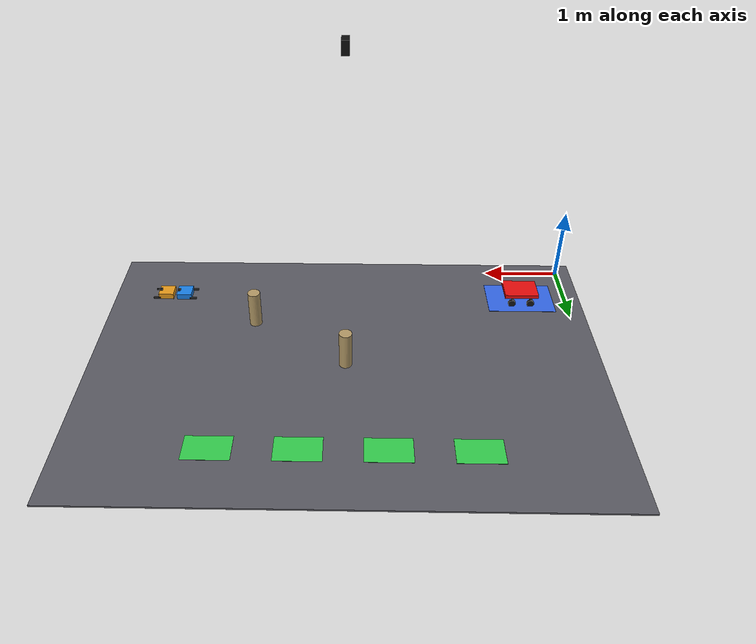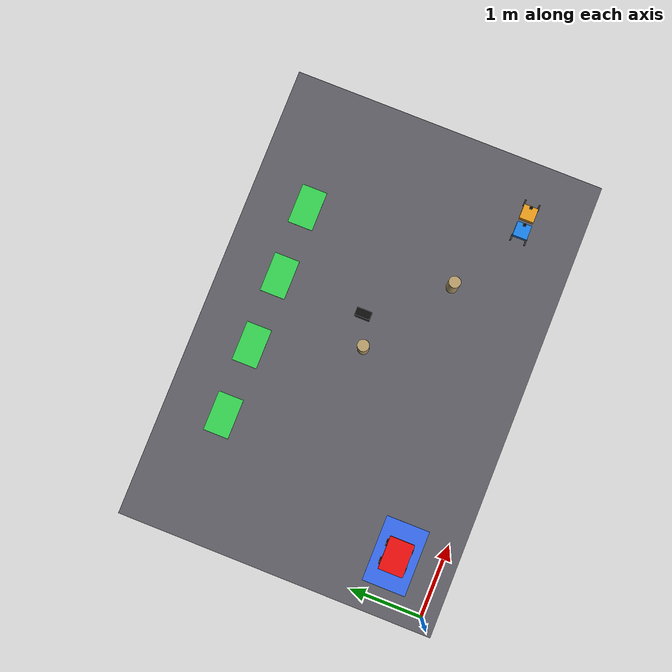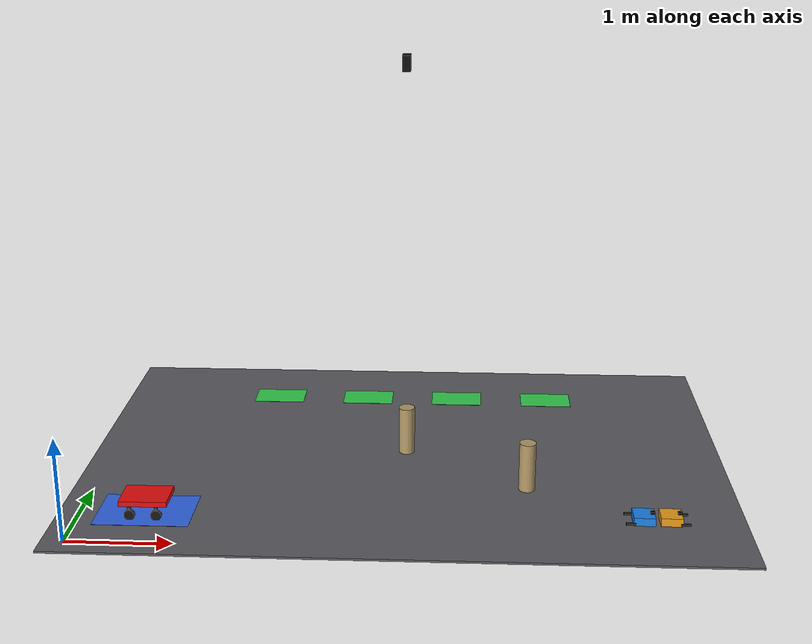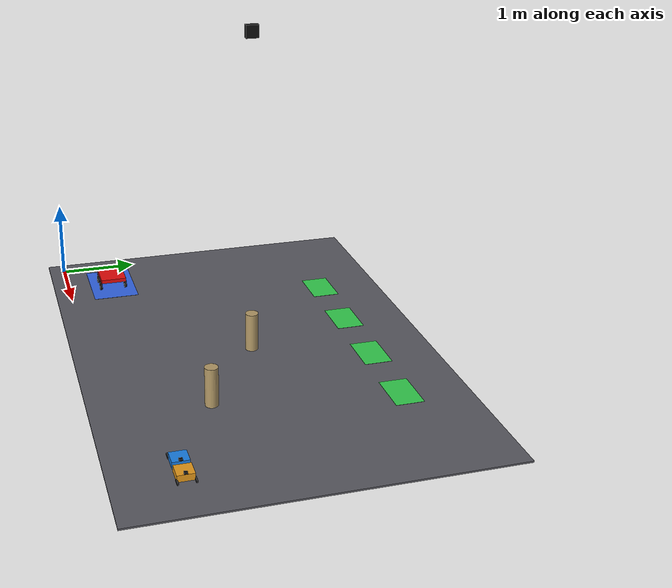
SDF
<?xml version="1.0" ?>

<sdf version="1.8">
  <world name="parking_lot">

    <!-- ===== Physics / Core Systems ===== -->
    <physics name="1ms" type="ignored">
      <max_step_size>0.001</max_step_size>
      <real_time_factor>1.0</real_time_factor>
    </physics>

    <plugin filename="gz-sim-physics-system"
            name="gz::sim::systems::Physics"/>

    <plugin filename="gz-sim-user-commands-system"
            name="gz::sim::systems::UserCommands"/>

    <plugin filename="gz-sim-scene-broadcaster-system"
            name="gz::sim::systems::SceneBroadcaster"/>

    <!-- Camera sensor를 쓰려면 Sensors system이 필요함 -->
    <plugin filename="gz-sim-sensors-system"
            name="gz::sim::systems::Sensors">
      <render_engine>ogre2</render_engine>
    </plugin>

    <!-- ===== Light ===== -->
    <light type="directional" name="sun">
      <cast_shadows>false</cast_shadows>
      <pose>0 0 10 0 0 0</pose>
      <diffuse>0.9 0.9 0.9 1</diffuse>
      <specular>0.2 0.2 0.2 1</specular>
      <direction>-0.3 0.3 -0.9</direction>
    </light>

    <!-- ===== Overhead CCTV Camera ===== -->
    <model name="overhead_cctv">
      <static>true</static>
      <pose>3 2 4.0 0 1.5708 0</pose>

      <link name="camera_link">
        <visual name="camera_body">
          <geometry>
            <box><size>0.15 0.15 0.08</size></box>
          </geometry>
          <material>
            <ambient>0.05 0.05 0.05 1</ambient>
            <diffuse>0.05 0.05 0.05 1</diffuse>
          </material>
        </visual>

        <sensor name="cctv_camera" type="camera">
          <always_on>true</always_on>
          <update_rate>15</update_rate>
          <topic>/cctv/image</topic>

          <camera>
            <horizontal_fov>1.5708</horizontal_fov>
            <image>
              <width>640</width>
              <height>480</height>
              <format>R8G8B8</format>
            </image>
            <clip>
              <near>0.1</near>
              <far>20.0</far>
            </clip>
          </camera>
        </sensor>
      </link>
    </model>
    <!-- ===== Target Vehicle (대기공간 정차 차량) ===== -->
    <model name="target_vehicle">
      <pose>0.625 0.6 0.002 0 0 0</pose>
      <link name="body">
        <inertial>
          <mass>1.5</mass>
          <inertia>
            <ixx>0.0153</ixx><iyy>0.0294</iyy><izz>0.0366</izz>
            <ixy>0</ixy><ixz>0</ixz><iyz>0</iyz>
          </inertia>
        </inertial>

        <!-- 차체 (빨강 — CCTV 차량 클래스 판별 기준) -->
        <visual name="body_visual">
          <pose>0 0 0.155 0 0 0</pose>
          <geometry><box><size>0.45 0.34 0.05</size></box></geometry>
          <material>
            <ambient>0.8 0.05 0.05 1</ambient>
            <diffuse>0.9 0.05 0.05 1</diffuse>
            <specular>0.1 0.1 0.1 1</specular>
          </material>
        </visual>
        <collision name="body_collision">
          <pose>0 0 0.155 0 0 0</pose>
          <geometry><box><size>0.45 0.34 0.05</size></box></geometry>
        </collision>

        <!-- 바퀴 4개 (검정 — 채도 낮아 CCTV 장애물 분할에 안 잡힘) -->
        <visual name="wheel_fl_vis">
          <pose>0.125 0.17 0.05 1.5708 0 0</pose>
          <geometry><cylinder><radius>0.05</radius><length>0.03</length></cylinder></geometry>
          <material><ambient>0.08 0.08 0.08 1</ambient><diffuse>0.08 0.08 0.08 1</diffuse></material>
        </visual>
        <collision name="wheel_fl_col">
          <pose>0.125 0.17 0.05 1.5708 0 0</pose>
          <geometry><cylinder><radius>0.05</radius><length>0.03</length></cylinder></geometry>
          <surface><friction><ode><mu>0.05</mu><mu2>0.05</mu2></ode></friction></surface>
        </collision>
        <visual name="wheel_fr_vis">
          <pose>0.125 -0.17 0.05 1.5708 0 0</pose>
          <geometry><cylinder><radius>0.05</radius><length>0.03</length></cylinder></geometry>
          <material><ambient>0.08 0.08 0.08 1</ambient><diffuse>0.08 0.08 0.08 1</diffuse></material>
        </visual>
        <collision name="wheel_fr_col">
          <pose>0.125 -0.17 0.05 1.5708 0 0</pose>
          <geometry><cylinder><radius>0.05</radius><length>0.03</length></cylinder></geometry>
          <surface><friction><ode><mu>0.05</mu><mu2>0.05</mu2></ode></friction></surface>
        </collision>
        <visual name="wheel_rl_vis">
          <pose>-0.125 0.17 0.05 1.5708 0 0</pose>
          <geometry><cylinder><radius>0.05</radius><length>0.03</length></cylinder></geometry>
          <material><ambient>0.08 0.08 0.08 1</ambient><diffuse>0.08 0.08 0.08 1</diffuse></material>
        </visual>
        <collision name="wheel_rl_col">
          <pose>-0.125 0.17 0.05 1.5708 0 0</pose>
          <geometry><cylinder><radius>0.05</radius><length>0.03</length></cylinder></geometry>
          <surface><friction><ode><mu>0.05</mu><mu2>0.05</mu2></ode></friction></surface>
        </collision>
        <visual name="wheel_rr_vis">
          <pose>-0.125 -0.17 0.05 1.5708 0 0</pose>
          <geometry><cylinder><radius>0.05</radius><length>0.03</length></cylinder></geometry>
          <material><ambient>0.08 0.08 0.08 1</ambient><diffuse>0.08 0.08 0.08 1</diffuse></material>
        </visual>
        <collision name="wheel_rr_col">
          <pose>-0.125 -0.17 0.05 1.5708 0 0</pose>
          <geometry><cylinder><radius>0.05</radius><length>0.03</length></cylinder></geometry>
          <surface><friction><ode><mu>0.05</mu><mu2>0.05</mu2></ode></friction></surface>
        </collision>

        <!-- 바퀴-차체 스트럿 (visual only) -->
        <visual name="strut_fl"><pose>0.125 0.17 0.115 0 0 0</pose>
          <geometry><box><size>0.03 0.02 0.03</size></box></geometry>
          <material><ambient>0.3 0.3 0.3 1</ambient><diffuse>0.3 0.3 0.3 1</diffuse></material></visual>
        <visual name="strut_fr"><pose>0.125 -0.17 0.115 0 0 0</pose>
          <geometry><box><size>0.03 0.02 0.03</size></box></geometry>
          <material><ambient>0.3 0.3 0.3 1</ambient><diffuse>0.3 0.3 0.3 1</diffuse></material></visual>
        <visual name="strut_rl"><pose>-0.125 0.17 0.115 0 0 0</pose>
          <geometry><box><size>0.03 0.02 0.03</size></box></geometry>
          <material><ambient>0.3 0.3 0.3 1</ambient><diffuse>0.3 0.3 0.3 1</diffuse></material></visual>
        <visual name="strut_rr"><pose>-0.125 -0.17 0.115 0 0 0</pose>
          <geometry><box><size>0.03 0.02 0.03</size></box></geometry>
          <material><ambient>0.3 0.3 0.3 1</ambient><diffuse>0.3 0.3 0.3 1</diffuse></material></visual>
      </link>
    </model>
    <!-- ===== Ground ===== -->
    <model name="ground">
      <static>true</static>
      <pose>3 2 0 0 0 0</pose>
      <link name="link">
        <collision name="col">
          <geometry>
            <box><size>6.4 4.4 0.02</size></box>
          </geometry>
        </collision>
        <visual name="vis">
          <geometry>
            <box><size>6.4 4.4 0.02</size></box>
          </geometry>
          <material>
            <ambient>0.35 0.35 0.38 1</ambient>
            <diffuse>0.35 0.35 0.38 1</diffuse>
          </material>
        </visual>
      </link>
    </model>

    <!-- ===== Pillar 1 ===== -->
    <model name="pillar_1">
      <static>true</static>
      <pose>3.0 2.0 0.25 0 0 0</pose>
      <link name="link">
        <collision name="col">
          <geometry><cylinder><radius>0.08</radius><length>0.5</length></cylinder></geometry>
        </collision>
        <visual name="vis">
          <geometry><cylinder><radius>0.08</radius><length>0.5</length></cylinder></geometry>
          <material>
            <ambient>0.7 0.6 0.4 1</ambient>
            <diffuse>0.7 0.6 0.4 1</diffuse>
          </material>
        </visual>
      </link>
    </model>

    <!-- ===== Pillar 2 ===== -->
    <model name="pillar_2">
      <static>true</static>
      <pose>4.2 1.2 0.25 0 0 0</pose>
      <link name="link">
        <collision name="col">
          <geometry><cylinder><radius>0.08</radius><length>0.5</length></cylinder></geometry>
        </collision>
        <visual name="vis">
          <geometry><cylinder><radius>0.08</radius><length>0.5</length></cylinder></geometry>
          <material>
            <ambient>0.7 0.6 0.4 1</ambient>
            <diffuse>0.7 0.6 0.4 1</diffuse>
          </material>
        </visual>
      </link>
    </model>

    <!-- ===== Waiting Zone ===== -->
    <model name="waiting_zone">
      <static>true</static>
      <pose>0.62 0.6 0.011 0 0 0</pose>
      <link name="link">
        <visual name="vis">
          <geometry><box><size>0.9 0.6 0.002</size></box></geometry>
          <material>
            <ambient>0.2 0.4 0.9 1</ambient>
            <diffuse>0.2 0.4 0.9 1</diffuse>
          </material>
        </visual>
      </link>
    </model>

    <!-- ===== Parking Slots ===== -->
    <model name="slot_1">
      <static>true</static>
      <pose>1.5 3.4 0.011 0 0 0</pose>
      <link name="link">
        <visual name="vis">
          <geometry><box><size>0.55 0.35 0.002</size></box></geometry>
          <material><ambient>0.2 0.8 0.3 1</ambient><diffuse>0.2 0.8 0.3 1</diffuse></material>
        </visual>
      </link>
    </model>

    <model name="slot_2">
      <static>true</static>
      <pose>2.5 3.4 0.011 0 0 0</pose>
      <link name="link">
        <visual name="vis">
          <geometry><box><size>0.55 0.35 0.002</size></box></geometry>
          <material><ambient>0.2 0.8 0.3 1</ambient><diffuse>0.2 0.8 0.3 1</diffuse></material>
        </visual>
      </link>
    </model>

    <model name="slot_3">
      <static>true</static>
      <pose>3.5 3.4 0.011 0 0 0</pose>
      <link name="link">
        <visual name="vis">
          <geometry><box><size>0.55 0.35 0.002</size></box></geometry>
          <material><ambient>0.2 0.8 0.3 1</ambient><diffuse>0.2 0.8 0.3 1</diffuse></material>
        </visual>
      </link>
    </model>

    <model name="slot_4">
      <static>true</static>
      <pose>4.5 3.4 0.011 0 0 0</pose>
      <link name="link">
        <visual name="vis">
          <geometry><box><size>0.55 0.35 0.002</size></box></geometry>
          <material><ambient>0.2 0.8 0.3 1</ambient><diffuse>0.2 0.8 0.3 1</diffuse></material>
        </visual>
      </link>
    </model>

    <!-- ===== Front Robot ===== -->
    <model name="front_robot">
      <pose>5.50 0.60 0.05 0 0 0</pose>
      <link name="base_link">
        <inertial>
          <mass>2.0</mass>
          <inertia><ixx>0.01</ixx><iyy>0.01</iyy><izz>0.015</izz><ixy>0</ixy><ixz>0</ixz><iyz>0</iyz></inertia>
        </inertial>
        <collision name="col"><geometry><box><size>0.20 0.20 0.08</size></box></geometry></collision>
        <visual name="vis">
          <geometry><box><size>0.20 0.20 0.08</size></box></geometry>
          <material><ambient>0.9 0.6 0.1 1</ambient><diffuse>0.9 0.6 0.1 1</diffuse></material>
        </visual>
        <visual name="heading_mark">
          <pose>0.08 0 0.05 0 0 0</pose>
          <geometry><box><size>0.04 0.04 0.02</size></box></geometry>
          <material><ambient>0 0 0 1</ambient><diffuse>0 0 0 1</diffuse></material>
        </visual>

        <!-- 초음파 (HC-SR04 대역): 좌/우 측면, 바퀴 중심 높이(z=0.05).
             gpu_lidar지만 5-ray 15° 원뿔의 min 하나만 단일 거리값으로
             사용한다 — 각도분해능 없음, 실제 초음파와 동일 정보량. -->
        <sensor name="us_left" type="gpu_lidar">
          <pose>0 0.10 0 0 0 1.5708</pose>
          <topic>/front/us_left</topic>
          <update_rate>20</update_rate>
          <lidar>
            <scan>
              <horizontal>
                <samples>5</samples><resolution>1</resolution>
                <min_angle>-0.131</min_angle><max_angle>0.131</max_angle>
              </horizontal>
              <vertical><samples>1</samples><min_angle>0</min_angle><max_angle>0</max_angle></vertical>
            </scan>
            <range><min>0.02</min><max>2.0</max><resolution>0.003</resolution></range>
            <noise><type>gaussian</type><mean>0.0</mean><stddev>0.003</stddev></noise>
          </lidar>
        </sensor>
        <sensor name="us_right" type="gpu_lidar">
          <pose>0 -0.10 0 0 0 -1.5708</pose>
          <topic>/front/us_right</topic>
          <update_rate>20</update_rate>
          <lidar>
            <scan>
              <horizontal>
                <samples>5</samples><resolution>1</resolution>
                <min_angle>-0.131</min_angle><max_angle>0.131</max_angle>
              </horizontal>
              <vertical><samples>1</samples><min_angle>0</min_angle><max_angle>0</max_angle></vertical>
            </scan>
            <range><min>0.02</min><max>2.0</max><resolution>0.003</resolution></range>
            <noise><type>gaussian</type><mean>0.0</mean><stddev>0.003</stddev></noise>
          </lidar>
        </sensor>
      </link>

      <!-- 그리퍼 바 (0.09x0.02x0.02): 접힘 0° = +x 밀착, 전개 90° = ±y.
           front robot은 앞바퀴 '앞면' 3cm 지점을 막는다 (앞뒤 케이지). -->
      <link name="grip_left">
        <pose relative_to="base_link">0.08 0.10 -0.02 0 0 0</pose>
        <inertial>
          <mass>0.02</mass>
          <inertia><ixx>1e-5</ixx><iyy>1e-5</iyy><izz>1e-5</izz><ixy>0</ixy><ixz>0</ixz><iyz>0</iyz></inertia>
        </inertial>
        <visual name="vis">
          <pose>0.045 0 0 0 0 0</pose>
          <geometry><box><size>0.09 0.02 0.02</size></box></geometry>
          <material><ambient>0.2 0.2 0.2 1</ambient><diffuse>0.2 0.2 0.2 1</diffuse></material>
        </visual>
        <collision name="col">
          <pose>0.045 0 0 0 0 0</pose>
          <geometry><box><size>0.09 0.02 0.02</size></box></geometry>
        </collision>
      </link>
      <joint name="grip_left_joint" type="revolute">
        <parent>base_link</parent>
        <child>grip_left</child>
        <axis>
          <xyz>0 0 1</xyz>
          <limit><lower>0</lower><upper>1.5708</upper><effort>5</effort></limit>
          <dynamics><damping>0.05</damping></dynamics>
        </axis>
      </joint>
      <link name="grip_right">
        <pose relative_to="base_link">0.08 -0.10 -0.02 0 0 0</pose>
        <inertial>
          <mass>0.02</mass>
          <inertia><ixx>1e-5</ixx><iyy>1e-5</iyy><izz>1e-5</izz><ixy>0</ixy><ixz>0</ixz><iyz>0</iyz></inertia>
        </inertial>
        <visual name="vis">
          <pose>0.045 0 0 0 0 0</pose>
          <geometry><box><size>0.09 0.02 0.02</size></box></geometry>
          <material><ambient>0.2 0.2 0.2 1</ambient><diffuse>0.2 0.2 0.2 1</diffuse></material>
        </visual>
        <collision name="col">
          <pose>0.045 0 0 0 0 0</pose>
          <geometry><box><size>0.09 0.02 0.02</size></box></geometry>
        </collision>
      </link>
      <joint name="grip_right_joint" type="revolute">
        <parent>base_link</parent>
        <child>grip_right</child>
        <axis>
          <xyz>0 0 -1</xyz>
          <limit><lower>0</lower><upper>1.5708</upper><effort>5</effort></limit>
          <dynamics><damping>0.05</damping></dynamics>
        </axis>
      </joint>

      <plugin filename="gz-sim-joint-position-controller-system" name="gz::sim::systems::JointPositionController">
        <joint_name>grip_left_joint</joint_name>
        <topic>/front/grip_left_cmd</topic>
        <p_gain>2.0</p_gain><i_gain>0.05</i_gain>
      </plugin>
      <plugin filename="gz-sim-joint-position-controller-system" name="gz::sim::systems::JointPositionController">
        <joint_name>grip_right_joint</joint_name>
        <topic>/front/grip_right_cmd</topic>
        <p_gain>2.0</p_gain><i_gain>0.05</i_gain>
      </plugin>

      <!-- 차량 결합: 시작 시 attach 상태로 생성되므로
           gripper_controller가 기동 직후 detach를 발행한다. -->
      <plugin filename="gz-sim-detachable-joint-system" name="gz::sim::systems::DetachableJoint">
        <parent_link>base_link</parent_link>
        <child_model>target_vehicle</child_model>
        <child_link>body</child_link>
        <detach_topic>/front/vehicle_detach</detach_topic>
        <attach_topic>/front/vehicle_attach</attach_topic>
        <output_topic>/front/vehicle_attached</output_topic>
      </plugin>

      <plugin filename="gz-sim-velocity-control-system" name="gz::sim::systems::VelocityControl">
        <topic>/model/front_robot/cmd_vel</topic>
      </plugin>
      <plugin filename="gz-sim-odometry-publisher-system" name="gz::sim::systems::OdometryPublisher">
        <odom_frame>front_robot/odom</odom_frame>
        <robot_base_frame>front_robot/base_link</robot_base_frame>
        <odom_topic>/model/front_robot/odometry</odom_topic>
        <odom_publish_frequency>50</odom_publish_frequency>
      </plugin>
    </model>

    <!-- ===== Rear Robot ===== -->
    <model name="rear_robot">
      <pose>5.25 0.60 0.05 0 0 0</pose>
      <link name="base_link">
        <inertial>
          <mass>2.0</mass>
          <inertia><ixx>0.01</ixx><iyy>0.01</iyy><izz>0.015</izz><ixy>0</ixy><ixz>0</ixz><iyz>0</iyz></inertia>
        </inertial>
        <collision name="col"><geometry><box><size>0.20 0.20 0.08</size></box></geometry></collision>
        <visual name="vis">
          <geometry><box><size>0.20 0.20 0.08</size></box></geometry>
          <material><ambient>0.1 0.5 0.9 1</ambient><diffuse>0.1 0.5 0.9 1</diffuse></material>
        </visual>
        <visual name="heading_mark">
          <pose>0.08 0 0.05 0 0 0</pose>
          <geometry><box><size>0.04 0.04 0.02</size></box></geometry>
          <material><ambient>0 0 0 1</ambient><diffuse>0 0 0 1</diffuse></material>
        </visual>

        <!-- 초음파 (HC-SR04 대역) — front_robot과 동일 -->
        <sensor name="us_left" type="gpu_lidar">
          <pose>0 0.10 0 0 0 1.5708</pose>
          <topic>/rear/us_left</topic>
          <update_rate>20</update_rate>
          <lidar>
            <scan>
              <horizontal>
                <samples>5</samples><resolution>1</resolution>
                <min_angle>-0.131</min_angle><max_angle>0.131</max_angle>
              </horizontal>
              <vertical><samples>1</samples><min_angle>0</min_angle><max_angle>0</max_angle></vertical>
            </scan>
            <range><min>0.02</min><max>2.0</max><resolution>0.003</resolution></range>
            <noise><type>gaussian</type><mean>0.0</mean><stddev>0.003</stddev></noise>
          </lidar>
        </sensor>
        <sensor name="us_right" type="gpu_lidar">
          <pose>0 -0.10 0 0 0 -1.5708</pose>
          <topic>/rear/us_right</topic>
          <update_rate>20</update_rate>
          <lidar>
            <scan>
              <horizontal>
                <samples>5</samples><resolution>1</resolution>
                <min_angle>-0.131</min_angle><max_angle>0.131</max_angle>
              </horizontal>
              <vertical><samples>1</samples><min_angle>0</min_angle><max_angle>0</max_angle></vertical>
            </scan>
            <range><min>0.02</min><max>2.0</max><resolution>0.003</resolution></range>
            <noise><type>gaussian</type><mean>0.0</mean><stddev>0.003</stddev></noise>
          </lidar>
        </sensor>
      </link>

      <!-- 그리퍼 바: rear robot은 뒷바퀴 '뒷면' 3cm 지점을 막는다.
           접힘 0° = -x 밀착, 전개 90° = ±y (front와 앞뒤 케이지 완성) -->
      <link name="grip_left">
        <pose relative_to="base_link">-0.08 0.10 -0.02 0 0 0</pose>
        <inertial>
          <mass>0.02</mass>
          <inertia><ixx>1e-5</ixx><iyy>1e-5</iyy><izz>1e-5</izz><ixy>0</ixy><ixz>0</ixz><iyz>0</iyz></inertia>
        </inertial>
        <visual name="vis">
          <pose>-0.045 0 0 0 0 0</pose>
          <geometry><box><size>0.09 0.02 0.02</size></box></geometry>
          <material><ambient>0.2 0.2 0.2 1</ambient><diffuse>0.2 0.2 0.2 1</diffuse></material>
        </visual>
        <collision name="col">
          <pose>-0.045 0 0 0 0 0</pose>
          <geometry><box><size>0.09 0.02 0.02</size></box></geometry>
        </collision>
      </link>
      <joint name="grip_left_joint" type="revolute">
        <parent>base_link</parent>
        <child>grip_left</child>
        <axis>
          <xyz>0 0 -1</xyz>
          <limit><lower>0</lower><upper>1.5708</upper><effort>5</effort></limit>
          <dynamics><damping>0.05</damping></dynamics>
        </axis>
      </joint>
      <link name="grip_right">
        <pose relative_to="base_link">-0.08 -0.10 -0.02 0 0 0</pose>
        <inertial>
          <mass>0.02</mass>
          <inertia><ixx>1e-5</ixx><iyy>1e-5</iyy><izz>1e-5</izz><ixy>0</ixy><ixz>0</ixz><iyz>0</iyz></inertia>
        </inertial>
        <visual name="vis">
          <pose>-0.045 0 0 0 0 0</pose>
          <geometry><box><size>0.09 0.02 0.02</size></box></geometry>
          <material><ambient>0.2 0.2 0.2 1</ambient><diffuse>0.2 0.2 0.2 1</diffuse></material>
        </visual>
        <collision name="col">
          <pose>-0.045 0 0 0 0 0</pose>
          <geometry><box><size>0.09 0.02 0.02</size></box></geometry>
        </collision>
      </link>
      <joint name="grip_right_joint" type="revolute">
        <parent>base_link</parent>
        <child>grip_right</child>
        <axis>
          <xyz>0 0 1</xyz>
          <limit><lower>0</lower><upper>1.5708</upper><effort>5</effort></limit>
          <dynamics><damping>0.05</damping></dynamics>
        </axis>
      </joint>

      <plugin filename="gz-sim-joint-position-controller-system" name="gz::sim::systems::JointPositionController">
        <joint_name>grip_left_joint</joint_name>
        <topic>/rear/grip_left_cmd</topic>
        <p_gain>2.0</p_gain><i_gain>0.05</i_gain>
      </plugin>
      <plugin filename="gz-sim-joint-position-controller-system" name="gz::sim::systems::JointPositionController">
        <joint_name>grip_right_joint</joint_name>
        <topic>/rear/grip_right_cmd</topic>
        <p_gain>2.0</p_gain><i_gain>0.05</i_gain>
      </plugin>

      <plugin filename="gz-sim-detachable-joint-system" name="gz::sim::systems::DetachableJoint">
        <parent_link>base_link</parent_link>
        <child_model>target_vehicle</child_model>
        <child_link>body</child_link>
        <detach_topic>/rear/vehicle_detach</detach_topic>
        <attach_topic>/rear/vehicle_attach</attach_topic>
        <output_topic>/rear/vehicle_attached</output_topic>
      </plugin>

      <plugin filename="gz-sim-velocity-control-system" name="gz::sim::systems::VelocityControl">
        <topic>/model/rear_robot/cmd_vel</topic>
      </plugin>
      <plugin filename="gz-sim-odometry-publisher-system" name="gz::sim::systems::OdometryPublisher">
        <odom_frame>rear_robot/odom</odom_frame>
        <robot_base_frame>rear_robot/base_link</robot_base_frame>
        <odom_topic>/model/rear_robot/odometry</odom_topic>
        <odom_publish_frequency>50</odom_publish_frequency>
      </plugin>
    </model>

  </world>
</sdf>
